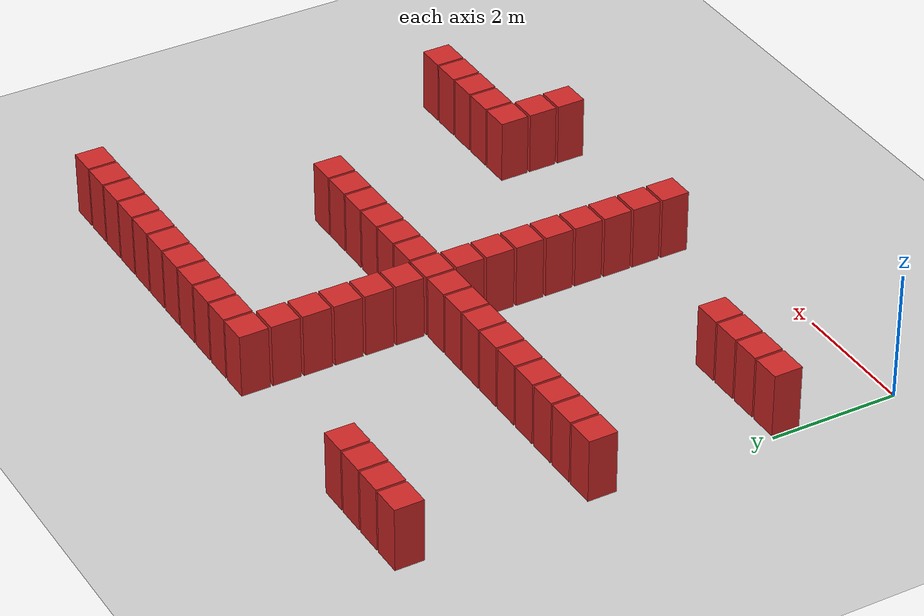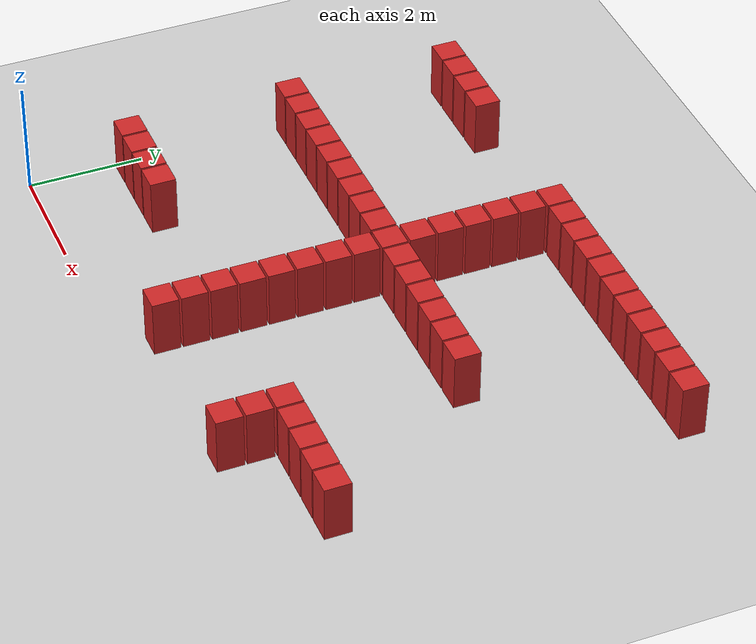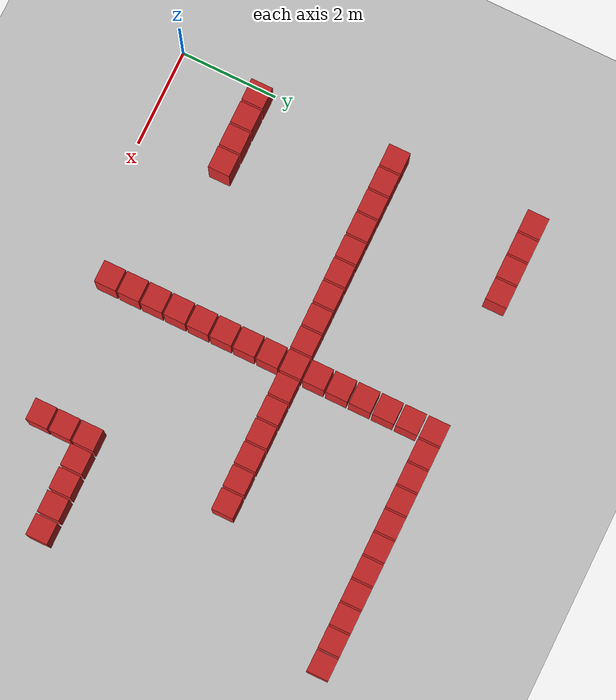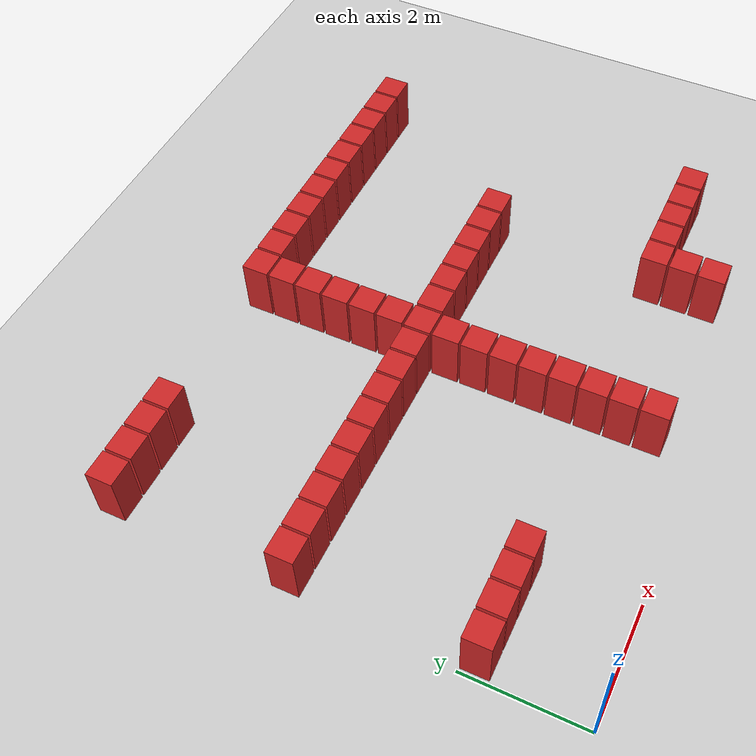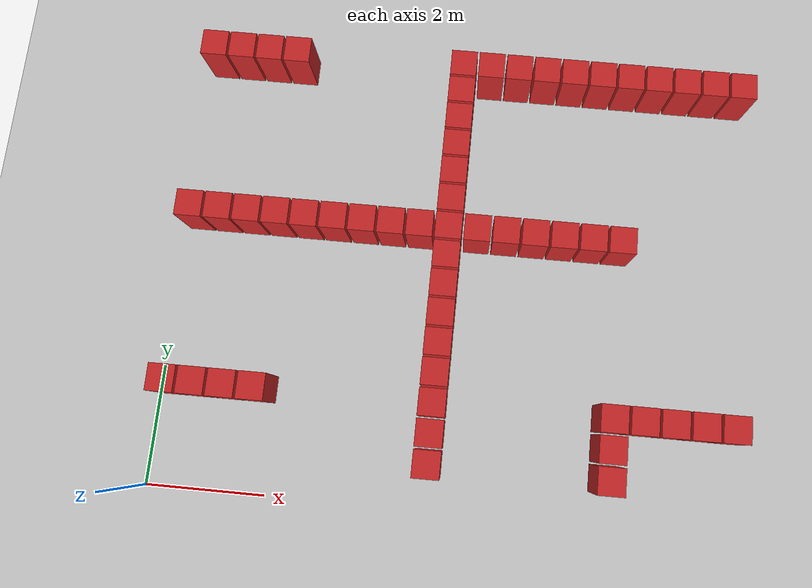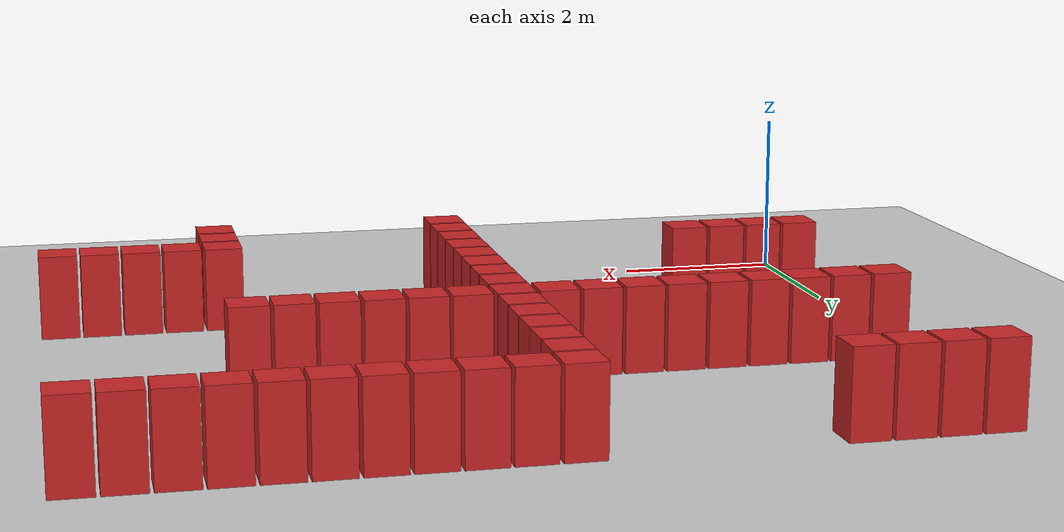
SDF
<sdf version="1.6">
 <world name="default">
  <model name="ground_plane">
   <static>1</static>
   <link name="link">
    <collision name="collision">
     <geometry><plane><normal>0 0 1</normal><size>100 100</size></plane></geometry>
     <surface><friction><ode><mu>100</mu><mu2>50</mu2></ode></friction></surface>
    </collision>
    <visual name="visual">
     <cast_shadows>0</cast_shadows>
     <geometry><plane><normal>0 0 1</normal><size>100 100</size></plane></geometry>
     <material>
      <script><uri>file://media/materials/scripts/gazebo.material</uri><name>Gazebo/Grey</name></script>
     </material>
    </visual>
   </link>
  </model>
  <model name="box_obstacle105">
   <static>0</static>
   <link name="link">
    <pose>0 0 0.1 0 -0 0</pose>
    <inertial>
     <mass>100</mass>
     <inertia>
      <ixx>0.166667</ixx>
      <ixy>0</ixy>
      <ixz>0</ixz>
      <iyy>0.166667</iyy>
      <iyz>0</iyz>
      <izz>0.166667</izz>
     </inertia>
    </inertial>
    <collision name="collision"><geometry><box><size>0.45 0.45 1</size></box></geometry></collision>
    <visual name="visual">
     <geometry><box><size>0.45 0.45 1</size></box></geometry>
     <material>
      <script><name>Gazebo/Red</name><uri>file://media/materials/scripts/gazebo.material</uri></script>
     </material>
    </visual>
   </link>
   <pose>0.289492 1.75876 0.4 0 5e-06 0.002247</pose>
  </model>
  <model name="box_obstacle106">
   <static>0</static>
   <link name="link">
    <pose>0 0 0.1 0 -0 0</pose>
    <inertial>
     <mass>100</mass>
     <inertia>
      <ixx>0.166667</ixx>
      <ixy>0</ixy>
      <ixz>0</ixz>
      <iyy>0.166667</iyy>
      <iyz>0</iyz>
      <izz>0.166667</izz>
     </inertia>
    </inertial>
    <collision name="collision"><geometry><box><size>0.45 0.45 1</size></box></geometry></collision>
    <visual name="visual">
     <geometry><box><size>0.45 0.45 1</size></box></geometry>
     <material>
      <script><name>Gazebo/Red</name><uri>file://media/materials/scripts/gazebo.material</uri></script>
     </material>
    </visual>
   </link>
   <pose>0.289492 4.69876 0.4 0 5e-06 0.002247</pose>
  </model>
  <model name="box_obstacle107">
   <static>0</static>
   <link name="link">
    <pose>0 0 0.1 0 -0 0</pose>
    <inertial>
     <mass>100</mass>
     <inertia>
      <ixx>0.166667</ixx>
      <ixy>0</ixy>
      <ixz>0</ixz>
      <iyy>0.166667</iyy>
      <iyz>0</iyz>
      <izz>0.166667</izz>
     </inertia>
    </inertial>
    <collision name="collision"><geometry><box><size>0.45 0.45 1</size></box></geometry></collision>
    <visual name="visual">
     <geometry><box><size>0.45 0.45 1</size></box></geometry>
     <material>
      <script><name>Gazebo/Red</name><uri>file://media/materials/scripts/gazebo.material</uri></script>
     </material>
    </visual>
   </link>
   <pose>0.289492 7.63876 0.4 0 5e-06 0.002247</pose>
  </model>
  <model name="box_obstacle110">
   <static>0</static>
   <link name="link">
    <pose>0 0 0.1 0 -0 0</pose>
    <inertial>
     <mass>100</mass>
     <inertia>
      <ixx>0.166667</ixx>
      <ixy>0</ixy>
      <ixz>0</ixz>
      <iyy>0.166667</iyy>
      <iyz>0</iyz>
      <izz>0.166667</izz>
     </inertia>
    </inertial>
    <collision name="collision"><geometry><box><size>0.45 0.45 1</size></box></geometry></collision>
    <visual name="visual">
     <geometry><box><size>0.45 0.45 1</size></box></geometry>
     <material>
      <script><name>Gazebo/Red</name><uri>file://media/materials/scripts/gazebo.material</uri></script>
     </material>
    </visual>
   </link>
   <pose>0.779492 1.75876 0.4 0 5e-06 0.002247</pose>
  </model>
  <model name="box_obstacle111">
   <static>0</static>
   <link name="link">
    <pose>0 0 0.1 0 -0 0</pose>
    <inertial>
     <mass>100</mass>
     <inertia>
      <ixx>0.166667</ixx>
      <ixy>0</ixy>
      <ixz>0</ixz>
      <iyy>0.166667</iyy>
      <iyz>0</iyz>
      <izz>0.166667</izz>
     </inertia>
    </inertial>
    <collision name="collision"><geometry><box><size>0.45 0.45 1</size></box></geometry></collision>
    <visual name="visual">
     <geometry><box><size>0.45 0.45 1</size></box></geometry>
     <material>
      <script><name>Gazebo/Red</name><uri>file://media/materials/scripts/gazebo.material</uri></script>
     </material>
    </visual>
   </link>
   <pose>0.779492 4.69876 0.4 0 5e-06 0.002247</pose>
  </model>
  <model name="box_obstacle112">
   <static>0</static>
   <link name="link">
    <pose>0 0 0.1 0 -0 0</pose>
    <inertial>
     <mass>100</mass>
     <inertia>
      <ixx>0.166667</ixx>
      <ixy>0</ixy>
      <ixz>0</ixz>
      <iyy>0.166667</iyy>
      <iyz>0</iyz>
      <izz>0.166667</izz>
     </inertia>
    </inertial>
    <collision name="collision"><geometry><box><size>0.45 0.45 1</size></box></geometry></collision>
    <visual name="visual">
     <geometry><box><size>0.45 0.45 1</size></box></geometry>
     <material>
      <script><name>Gazebo/Red</name><uri>file://media/materials/scripts/gazebo.material</uri></script>
     </material>
    </visual>
   </link>
   <pose>0.779492 7.63876 0.4 0 5e-06 0.002247</pose>
  </model>
  <model name="box_obstacle115">
   <static>0</static>
   <link name="link">
    <pose>0 0 0.1 0 -0 0</pose>
    <inertial>
     <mass>100</mass>
     <inertia>
      <ixx>0.166667</ixx>
      <ixy>0</ixy>
      <ixz>0</ixz>
      <iyy>0.166667</iyy>
      <iyz>0</iyz>
      <izz>0.166667</izz>
     </inertia>
    </inertial>
    <collision name="collision"><geometry><box><size>0.45 0.45 1</size></box></geometry></collision>
    <visual name="visual">
     <geometry><box><size>0.45 0.45 1</size></box></geometry>
     <material>
      <script><name>Gazebo/Red</name><uri>file://media/materials/scripts/gazebo.material</uri></script>
     </material>
    </visual>
   </link>
   <pose>1.26949 1.75876 0.4 0 5e-06 0.002247</pose>
  </model>
  <model name="box_obstacle116">
   <static>0</static>
   <link name="link">
    <pose>0 0 0.1 0 -0 0</pose>
    <inertial>
     <mass>100</mass>
     <inertia>
      <ixx>0.166667</ixx>
      <ixy>0</ixy>
      <ixz>0</ixz>
      <iyy>0.166667</iyy>
      <iyz>0</iyz>
      <izz>0.166667</izz>
     </inertia>
    </inertial>
    <collision name="collision"><geometry><box><size>0.45 0.45 1</size></box></geometry></collision>
    <visual name="visual">
     <geometry><box><size>0.45 0.45 1</size></box></geometry>
     <material>
      <script><name>Gazebo/Red</name><uri>file://media/materials/scripts/gazebo.material</uri></script>
     </material>
    </visual>
   </link>
   <pose>1.26949 4.69876 0.4 0 5e-06 0.002247</pose>
  </model>
  <model name="box_obstacle117">
   <static>0</static>
   <link name="link">
    <pose>0 0 0.1 0 -0 0</pose>
    <inertial>
     <mass>100</mass>
     <inertia>
      <ixx>0.166667</ixx>
      <ixy>0</ixy>
      <ixz>0</ixz>
      <iyy>0.166667</iyy>
      <iyz>0</iyz>
      <izz>0.166667</izz>
     </inertia>
    </inertial>
    <collision name="collision"><geometry><box><size>0.45 0.45 1</size></box></geometry></collision>
    <visual name="visual">
     <geometry><box><size>0.45 0.45 1</size></box></geometry>
     <material>
      <script><name>Gazebo/Red</name><uri>file://media/materials/scripts/gazebo.material</uri></script>
     </material>
    </visual>
   </link>
   <pose>1.26949 7.63876 0.4 0 5e-06 0.002247</pose>
  </model>
  <model name="box_obstacle126">
   <static>0</static>
   <link name="link">
    <pose>0 0 0.1 0 -0 0</pose>
    <inertial>
     <mass>100</mass>
     <inertia>
      <ixx>0.166667</ixx>
      <ixy>0</ixy>
      <ixz>0</ixz>
      <iyy>0.166667</iyy>
      <iyz>0</iyz>
      <izz>0.166667</izz>
     </inertia>
    </inertial>
    <collision name="collision"><geometry><box><size>0.45 0.45 1</size></box></geometry></collision>
    <visual name="visual">
     <geometry><box><size>0.45 0.45 1</size></box></geometry>
     <material>
      <script><name>Gazebo/Red</name><uri>file://media/materials/scripts/gazebo.material</uri></script>
     </material>
    </visual>
   </link>
   <pose>1.75949 1.75876 0.4 0 5e-06 0.002247</pose>
  </model>
  <model name="box_obstacle127">
   <static>0</static>
   <link name="link">
    <pose>0 0 0.1 0 -0 0</pose>
    <inertial>
     <mass>100</mass>
     <inertia>
      <ixx>0.166667</ixx>
      <ixy>0</ixy>
      <ixz>0</ixz>
      <iyy>0.166667</iyy>
      <iyz>0</iyz>
      <izz>0.166667</izz>
     </inertia>
    </inertial>
    <collision name="collision"><geometry><box><size>0.45 0.45 1</size></box></geometry></collision>
    <visual name="visual">
     <geometry><box><size>0.45 0.45 1</size></box></geometry>
     <material>
      <script><name>Gazebo/Red</name><uri>file://media/materials/scripts/gazebo.material</uri></script>
     </material>
    </visual>
   </link>
   <pose>1.75949 4.69876 0.4 0 5e-06 0.002247</pose>
  </model>
  <model name="box_obstacle128">
   <static>0</static>
   <link name="link">
    <pose>0 0 0.1 0 -0 0</pose>
    <inertial>
     <mass>100</mass>
     <inertia>
      <ixx>0.166667</ixx>
      <ixy>0</ixy>
      <ixz>0</ixz>
      <iyy>0.166667</iyy>
      <iyz>0</iyz>
      <izz>0.166667</izz>
     </inertia>
    </inertial>
    <collision name="collision"><geometry><box><size>0.45 0.45 1</size></box></geometry></collision>
    <visual name="visual">
     <geometry><box><size>0.45 0.45 1</size></box></geometry>
     <material>
      <script><name>Gazebo/Red</name><uri>file://media/materials/scripts/gazebo.material</uri></script>
     </material>
    </visual>
   </link>
   <pose>1.75949 7.63876 0.4 0 5e-06 0.002247</pose>
  </model>
  <model name="box_obstacle131">
   <static>0</static>
   <link name="link">
    <pose>0 0 0.1 0 -0 0</pose>
    <inertial>
     <mass>100</mass>
     <inertia>
      <ixx>0.166667</ixx>
      <ixy>0</ixy>
      <ixz>0</ixz>
      <iyy>0.166667</iyy>
      <iyz>0</iyz>
      <izz>0.166667</izz>
     </inertia>
    </inertial>
    <collision name="collision"><geometry><box><size>0.45 0.45 1</size></box></geometry></collision>
    <visual name="visual">
     <geometry><box><size>0.45 0.45 1</size></box></geometry>
     <material>
      <script><name>Gazebo/Red</name><uri>file://media/materials/scripts/gazebo.material</uri></script>
     </material>
    </visual>
   </link>
   <pose>2.24949 4.69876 0.4 0 5e-06 0.002247</pose>
  </model>
  <model name="box_obstacle134">
   <static>0</static>
   <link name="link">
    <pose>0 0 0.1 0 -0 0</pose>
    <inertial>
     <mass>100</mass>
     <inertia>
      <ixx>0.166667</ixx>
      <ixy>0</ixy>
      <ixz>0</ixz>
      <iyy>0.166667</iyy>
      <iyz>0</iyz>
      <izz>0.166667</izz>
     </inertia>
    </inertial>
    <collision name="collision"><geometry><box><size>0.45 0.45 1</size></box></geometry></collision>
    <visual name="visual">
     <geometry><box><size>0.45 0.45 1</size></box></geometry>
     <material>
      <script><name>Gazebo/Red</name><uri>file://media/materials/scripts/gazebo.material</uri></script>
     </material>
    </visual>
   </link>
   <pose>2.73949 4.69876 0.4 0 5e-06 0.002247</pose>
  </model>
  <model name="box_obstacle137">
   <static>0</static>
   <link name="link">
    <pose>0 0 0.1 0 -0 0</pose>
    <inertial>
     <mass>100</mass>
     <inertia>
      <ixx>0.166667</ixx>
      <ixy>0</ixy>
      <ixz>0</ixz>
      <iyy>0.166667</iyy>
      <iyz>0</iyz>
      <izz>0.166667</izz>
     </inertia>
    </inertial>
    <collision name="collision"><geometry><box><size>0.45 0.45 1</size></box></geometry></collision>
    <visual name="visual">
     <geometry><box><size>0.45 0.45 1</size></box></geometry>
     <material>
      <script><name>Gazebo/Red</name><uri>file://media/materials/scripts/gazebo.material</uri></script>
     </material>
    </visual>
   </link>
   <pose>3.22949 4.69876 0.4 0 5e-06 0.002247</pose>
  </model>
  <model name="box_obstacle140">
   <static>0</static>
   <link name="link">
    <pose>0 0 0.1 0 -0 0</pose>
    <inertial>
     <mass>100</mass>
     <inertia>
      <ixx>0.166667</ixx>
      <ixy>0</ixy>
      <ixz>0</ixz>
      <iyy>0.166667</iyy>
      <iyz>0</iyz>
      <izz>0.166667</izz>
     </inertia>
    </inertial>
    <collision name="collision"><geometry><box><size>0.45 0.45 1</size></box></geometry></collision>
    <visual name="visual">
     <geometry><box><size>0.45 0.45 1</size></box></geometry>
     <material>
      <script><name>Gazebo/Red</name><uri>file://media/materials/scripts/gazebo.material</uri></script>
     </material>
    </visual>
   </link>
   <pose>3.71949 4.69876 0.4 0 5e-06 0.002247</pose>
  </model>
  <model name="box_obstacle143">
   <static>0</static>
   <link name="link">
    <pose>0 0 0.1 0 -0 0</pose>
    <inertial>
     <mass>100</mass>
     <inertia>
      <ixx>0.166667</ixx>
      <ixy>0</ixy>
      <ixz>0</ixz>
      <iyy>0.166667</iyy>
      <iyz>0</iyz>
      <izz>0.166667</izz>
     </inertia>
    </inertial>
    <collision name="collision"><geometry><box><size>0.45 0.45 1</size></box></geometry></collision>
    <visual name="visual">
     <geometry><box><size>0.45 0.45 1</size></box></geometry>
     <material>
      <script><name>Gazebo/Red</name><uri>file://media/materials/scripts/gazebo.material</uri></script>
     </material>
    </visual>
   </link>
   <pose>4.20949 4.69876 0.4 0 5e-06 0.002247</pose>
  </model>
  <model name="box_obstacle155">
   <static>0</static>
   <link name="link">
    <pose>0 0 0.1 0 -0 0</pose>
    <inertial>
     <mass>100</mass>
     <inertia>
      <ixx>0.166667</ixx>
      <ixy>0</ixy>
      <ixz>0</ixz>
      <iyy>0.166667</iyy>
      <iyz>0</iyz>
      <izz>0.166667</izz>
     </inertia>
    </inertial>
    <collision name="collision"><geometry><box><size>0.45 0.45 1</size></box></geometry></collision>
    <visual name="visual">
     <geometry><box><size>0.45 0.45 1</size></box></geometry>
     <material>
      <script><name>Gazebo/Red</name><uri>file://media/materials/scripts/gazebo.material</uri></script>
     </material>
    </visual>
   </link>
   <pose>4.69949 0.778758 0.4 0 5e-06 0.002247</pose>
  </model>
  <model name="box_obstacle156">
   <static>0</static>
   <link name="link">
    <pose>0 0 0.1 0 -0 0</pose>
    <inertial>
     <mass>100</mass>
     <inertia>
      <ixx>0.166667</ixx>
      <ixy>0</ixy>
      <ixz>0</ixz>
      <iyy>0.166667</iyy>
      <iyz>0</iyz>
      <izz>0.166667</izz>
     </inertia>
    </inertial>
    <collision name="collision"><geometry><box><size>0.45 0.45 1</size></box></geometry></collision>
    <visual name="visual">
     <geometry><box><size>0.45 0.45 1</size></box></geometry>
     <material>
      <script><name>Gazebo/Red</name><uri>file://media/materials/scripts/gazebo.material</uri></script>
     </material>
    </visual>
   </link>
   <pose>4.69949 1.26876 0.4 0 5e-06 0.002247</pose>
  </model>
  <model name="box_obstacle157">
   <static>0</static>
   <link name="link">
    <pose>0 0 0.1 0 -0 0</pose>
    <inertial>
     <mass>100</mass>
     <inertia>
      <ixx>0.166667</ixx>
      <ixy>0</ixy>
      <ixz>0</ixz>
      <iyy>0.166667</iyy>
      <iyz>0</iyz>
      <izz>0.166667</izz>
     </inertia>
    </inertial>
    <collision name="collision"><geometry><box><size>0.45 0.45 1</size></box></geometry></collision>
    <visual name="visual">
     <geometry><box><size>0.45 0.45 1</size></box></geometry>
     <material>
      <script><name>Gazebo/Red</name><uri>file://media/materials/scripts/gazebo.material</uri></script>
     </material>
    </visual>
   </link>
   <pose>4.69949 1.75876 0.4 0 5e-06 0.002247</pose>
  </model>
  <model name="box_obstacle158">
   <static>0</static>
   <link name="link">
    <pose>0 0 0.1 0 -0 0</pose>
    <inertial>
     <mass>100</mass>
     <inertia>
      <ixx>0.166667</ixx>
      <ixy>0</ixy>
      <ixz>0</ixz>
      <iyy>0.166667</iyy>
      <iyz>0</iyz>
      <izz>0.166667</izz>
     </inertia>
    </inertial>
    <collision name="collision"><geometry><box><size>0.45 0.45 1</size></box></geometry></collision>
    <visual name="visual">
     <geometry><box><size>0.45 0.45 1</size></box></geometry>
     <material>
      <script><name>Gazebo/Red</name><uri>file://media/materials/scripts/gazebo.material</uri></script>
     </material>
    </visual>
   </link>
   <pose>4.69949 2.24876 0.4 0 5e-06 0.002247</pose>
  </model>
  <model name="box_obstacle159">
   <static>0</static>
   <link name="link">
    <pose>0 0 0.1 0 -0 0</pose>
    <inertial>
     <mass>100</mass>
     <inertia>
      <ixx>0.166667</ixx>
      <ixy>0</ixy>
      <ixz>0</ixz>
      <iyy>0.166667</iyy>
      <iyz>0</iyz>
      <izz>0.166667</izz>
     </inertia>
    </inertial>
    <collision name="collision"><geometry><box><size>0.45 0.45 1</size></box></geometry></collision>
    <visual name="visual">
     <geometry><box><size>0.45 0.45 1</size></box></geometry>
     <material>
      <script><name>Gazebo/Red</name><uri>file://media/materials/scripts/gazebo.material</uri></script>
     </material>
    </visual>
   </link>
   <pose>4.69949 2.73876 0.4 0 5e-06 0.002247</pose>
  </model>
  <model name="box_obstacle160">
   <static>0</static>
   <link name="link">
    <pose>0 0 0.1 0 -0 0</pose>
    <inertial>
     <mass>100</mass>
     <inertia>
      <ixx>0.166667</ixx>
      <ixy>0</ixy>
      <ixz>0</ixz>
      <iyy>0.166667</iyy>
      <iyz>0</iyz>
      <izz>0.166667</izz>
     </inertia>
    </inertial>
    <collision name="collision"><geometry><box><size>0.45 0.45 1</size></box></geometry></collision>
    <visual name="visual">
     <geometry><box><size>0.45 0.45 1</size></box></geometry>
     <material>
      <script><name>Gazebo/Red</name><uri>file://media/materials/scripts/gazebo.material</uri></script>
     </material>
    </visual>
   </link>
   <pose>4.69949 3.22876 0.4 0 5e-06 0.002247</pose>
  </model>
  <model name="box_obstacle161">
   <static>0</static>
   <link name="link">
    <pose>0 0 0.1 0 -0 0</pose>
    <inertial>
     <mass>100</mass>
     <inertia>
      <ixx>0.166667</ixx>
      <ixy>0</ixy>
      <ixz>0</ixz>
      <iyy>0.166667</iyy>
      <iyz>0</iyz>
      <izz>0.166667</izz>
     </inertia>
    </inertial>
    <collision name="collision"><geometry><box><size>0.45 0.45 1</size></box></geometry></collision>
    <visual name="visual">
     <geometry><box><size>0.45 0.45 1</size></box></geometry>
     <material>
      <script><name>Gazebo/Red</name><uri>file://media/materials/scripts/gazebo.material</uri></script>
     </material>
    </visual>
   </link>
   <pose>4.69949 3.71876 0.4 0 5e-06 0.002247</pose>
  </model>
  <model name="box_obstacle162">
   <static>0</static>
   <link name="link">
    <pose>0 0 0.1 0 -0 0</pose>
    <inertial>
     <mass>100</mass>
     <inertia>
      <ixx>0.166667</ixx>
      <ixy>0</ixy>
      <ixz>0</ixz>
      <iyy>0.166667</iyy>
      <iyz>0</iyz>
      <izz>0.166667</izz>
     </inertia>
    </inertial>
    <collision name="collision"><geometry><box><size>0.45 0.45 1</size></box></geometry></collision>
    <visual name="visual">
     <geometry><box><size>0.45 0.45 1</size></box></geometry>
     <material>
      <script><name>Gazebo/Red</name><uri>file://media/materials/scripts/gazebo.material</uri></script>
     </material>
    </visual>
   </link>
   <pose>4.69949 4.20876 0.4 0 5e-06 0.002247</pose>
  </model>
  <model name="box_obstacle163">
   <static>0</static>
   <link name="link">
    <pose>0 0 0.1 0 -0 0</pose>
    <inertial>
     <mass>100</mass>
     <inertia>
      <ixx>0.166667</ixx>
      <ixy>0</ixy>
      <ixz>0</ixz>
      <iyy>0.166667</iyy>
      <iyz>0</iyz>
      <izz>0.166667</izz>
     </inertia>
    </inertial>
    <collision name="collision"><geometry><box><size>0.45 0.45 1</size></box></geometry></collision>
    <visual name="visual">
     <geometry><box><size>0.45 0.45 1</size></box></geometry>
     <material>
      <script><name>Gazebo/Red</name><uri>file://media/materials/scripts/gazebo.material</uri></script>
     </material>
    </visual>
   </link>
   <pose>4.69949 4.69876 0.4 0 5e-06 0.002247</pose>
  </model>
  <model name="box_obstacle164">
   <static>0</static>
   <link name="link">
    <pose>0 0 0.1 0 -0 0</pose>
    <inertial>
     <mass>100</mass>
     <inertia>
      <ixx>0.166667</ixx>
      <ixy>0</ixy>
      <ixz>0</ixz>
      <iyy>0.166667</iyy>
      <iyz>0</iyz>
      <izz>0.166667</izz>
     </inertia>
    </inertial>
    <collision name="collision"><geometry><box><size>0.45 0.45 1</size></box></geometry></collision>
    <visual name="visual">
     <geometry><box><size>0.45 0.45 1</size></box></geometry>
     <material>
      <script><name>Gazebo/Red</name><uri>file://media/materials/scripts/gazebo.material</uri></script>
     </material>
    </visual>
   </link>
   <pose>4.69949 5.18876 0.4 0 5e-06 0.002247</pose>
  </model>
  <model name="box_obstacle165">
   <static>0</static>
   <link name="link">
    <pose>0 0 0.1 0 -0 0</pose>
    <inertial>
     <mass>100</mass>
     <inertia>
      <ixx>0.166667</ixx>
      <ixy>0</ixy>
      <ixz>0</ixz>
      <iyy>0.166667</iyy>
      <iyz>0</iyz>
      <izz>0.166667</izz>
     </inertia>
    </inertial>
    <collision name="collision"><geometry><box><size>0.45 0.45 1</size></box></geometry></collision>
    <visual name="visual">
     <geometry><box><size>0.45 0.45 1</size></box></geometry>
     <material>
      <script><name>Gazebo/Red</name><uri>file://media/materials/scripts/gazebo.material</uri></script>
     </material>
    </visual>
   </link>
   <pose>4.69949 5.67876 0.4 0 5e-06 0.002247</pose>
  </model>
  <model name="box_obstacle166">
   <static>0</static>
   <link name="link">
    <pose>0 0 0.1 0 -0 0</pose>
    <inertial>
     <mass>100</mass>
     <inertia>
      <ixx>0.166667</ixx>
      <ixy>0</ixy>
      <ixz>0</ixz>
      <iyy>0.166667</iyy>
      <iyz>0</iyz>
      <izz>0.166667</izz>
     </inertia>
    </inertial>
    <collision name="collision"><geometry><box><size>0.45 0.45 1</size></box></geometry></collision>
    <visual name="visual">
     <geometry><box><size>0.45 0.45 1</size></box></geometry>
     <material>
      <script><name>Gazebo/Red</name><uri>file://media/materials/scripts/gazebo.material</uri></script>
     </material>
    </visual>
   </link>
   <pose>4.69949 6.16876 0.4 0 5e-06 0.002247</pose>
  </model>
  <model name="box_obstacle167">
   <static>0</static>
   <link name="link">
    <pose>0 0 0.1 0 -0 0</pose>
    <inertial>
     <mass>100</mass>
     <inertia>
      <ixx>0.166667</ixx>
      <ixy>0</ixy>
      <ixz>0</ixz>
      <iyy>0.166667</iyy>
      <iyz>0</iyz>
      <izz>0.166667</izz>
     </inertia>
    </inertial>
    <collision name="collision"><geometry><box><size>0.45 0.45 1</size></box></geometry></collision>
    <visual name="visual">
     <geometry><box><size>0.45 0.45 1</size></box></geometry>
     <material>
      <script><name>Gazebo/Red</name><uri>file://media/materials/scripts/gazebo.material</uri></script>
     </material>
    </visual>
   </link>
   <pose>4.69949 6.65876 0.4 0 5e-06 0.002247</pose>
  </model>
  <model name="box_obstacle168">
   <static>0</static>
   <link name="link">
    <pose>0 0 0.1 0 -0 0</pose>
    <inertial>
     <mass>100</mass>
     <inertia>
      <ixx>0.166667</ixx>
      <ixy>0</ixy>
      <ixz>0</ixz>
      <iyy>0.166667</iyy>
      <iyz>0</iyz>
      <izz>0.166667</izz>
     </inertia>
    </inertial>
    <collision name="collision"><geometry><box><size>0.45 0.45 1</size></box></geometry></collision>
    <visual name="visual">
     <geometry><box><size>0.45 0.45 1</size></box></geometry>
     <material>
      <script><name>Gazebo/Red</name><uri>file://media/materials/scripts/gazebo.material</uri></script>
     </material>
    </visual>
   </link>
   <pose>4.69949 7.14876 0.4 0 5e-06 0.002247</pose>
  </model>
  <model name="box_obstacle169">
   <static>0</static>
   <link name="link">
    <pose>0 0 0.1 0 -0 0</pose>
    <inertial>
     <mass>100</mass>
     <inertia>
      <ixx>0.166667</ixx>
      <ixy>0</ixy>
      <ixz>0</ixz>
      <iyy>0.166667</iyy>
      <iyz>0</iyz>
      <izz>0.166667</izz>
     </inertia>
    </inertial>
    <collision name="collision"><geometry><box><size>0.45 0.45 1</size></box></geometry></collision>
    <visual name="visual">
     <geometry><box><size>0.45 0.45 1</size></box></geometry>
     <material>
      <script><name>Gazebo/Red</name><uri>file://media/materials/scripts/gazebo.material</uri></script>
     </material>
    </visual>
   </link>
   <pose>4.69949 7.63876 0.4 0 5e-06 0.002247</pose>
  </model>
  <model name="box_obstacle172">
   <static>0</static>
   <link name="link">
    <pose>0 0 0.1 0 -0 0</pose>
    <inertial>
     <mass>100</mass>
     <inertia>
      <ixx>0.166667</ixx>
      <ixy>0</ixy>
      <ixz>0</ixz>
      <iyy>0.166667</iyy>
      <iyz>0</iyz>
      <izz>0.166667</izz>
     </inertia>
    </inertial>
    <collision name="collision"><geometry><box><size>0.45 0.45 1</size></box></geometry></collision>
    <visual name="visual">
     <geometry><box><size>0.45 0.45 1</size></box></geometry>
     <material>
      <script><name>Gazebo/Red</name><uri>file://media/materials/scripts/gazebo.material</uri></script>
     </material>
    </visual>
   </link>
   <pose>5.18949 4.69876 0.4 0 5e-06 0.002247</pose>
  </model>
  <model name="box_obstacle173">
   <static>0</static>
   <link name="link">
    <pose>0 0 0.1 0 -0 0</pose>
    <inertial>
     <mass>100</mass>
     <inertia>
      <ixx>0.166667</ixx>
      <ixy>0</ixy>
      <ixz>0</ixz>
      <iyy>0.166667</iyy>
      <iyz>0</iyz>
      <izz>0.166667</izz>
     </inertia>
    </inertial>
    <collision name="collision"><geometry><box><size>0.45 0.45 1</size></box></geometry></collision>
    <visual name="visual">
     <geometry><box><size>0.45 0.45 1</size></box></geometry>
     <material>
      <script><name>Gazebo/Red</name><uri>file://media/materials/scripts/gazebo.material</uri></script>
     </material>
    </visual>
   </link>
   <pose>5.18949 7.63876 0.4 0 5e-06 0.002247</pose>
  </model>
  <model name="box_obstacle176">
   <static>0</static>
   <link name="link">
    <pose>0 0 0.1 0 -0 0</pose>
    <inertial>
     <mass>100</mass>
     <inertia>
      <ixx>0.166667</ixx>
      <ixy>0</ixy>
      <ixz>0</ixz>
      <iyy>0.166667</iyy>
      <iyz>0</iyz>
      <izz>0.166667</izz>
     </inertia>
    </inertial>
    <collision name="collision"><geometry><box><size>0.45 0.45 1</size></box></geometry></collision>
    <visual name="visual">
     <geometry><box><size>0.45 0.45 1</size></box></geometry>
     <material>
      <script><name>Gazebo/Red</name><uri>file://media/materials/scripts/gazebo.material</uri></script>
     </material>
    </visual>
   </link>
   <pose>5.67949 4.69876 0.4 0 5e-06 0.002247</pose>
  </model>
  <model name="box_obstacle177">
   <static>0</static>
   <link name="link">
    <pose>0 0 0.1 0 -0 0</pose>
    <inertial>
     <mass>100</mass>
     <inertia>
      <ixx>0.166667</ixx>
      <ixy>0</ixy>
      <ixz>0</ixz>
      <iyy>0.166667</iyy>
      <iyz>0</iyz>
      <izz>0.166667</izz>
     </inertia>
    </inertial>
    <collision name="collision"><geometry><box><size>0.45 0.45 1</size></box></geometry></collision>
    <visual name="visual">
     <geometry><box><size>0.45 0.45 1</size></box></geometry>
     <material>
      <script><name>Gazebo/Red</name><uri>file://media/materials/scripts/gazebo.material</uri></script>
     </material>
    </visual>
   </link>
   <pose>5.67949 7.63876 0.4 0 5e-06 0.002247</pose>
  </model>
  <model name="box_obstacle180">
   <static>0</static>
   <link name="link">
    <pose>0 0 0.1 0 -0 0</pose>
    <inertial>
     <mass>100</mass>
     <inertia>
      <ixx>0.166667</ixx>
      <ixy>0</ixy>
      <ixz>0</ixz>
      <iyy>0.166667</iyy>
      <iyz>0</iyz>
      <izz>0.166667</izz>
     </inertia>
    </inertial>
    <collision name="collision"><geometry><box><size>0.45 0.45 1</size></box></geometry></collision>
    <visual name="visual">
     <geometry><box><size>0.45 0.45 1</size></box></geometry>
     <material>
      <script><name>Gazebo/Red</name><uri>file://media/materials/scripts/gazebo.material</uri></script>
     </material>
    </visual>
   </link>
   <pose>6.16949 4.69876 0.4 0 5e-06 0.002247</pose>
  </model>
  <model name="box_obstacle181">
   <static>0</static>
   <link name="link">
    <pose>0 0 0.1 0 -0 0</pose>
    <inertial>
     <mass>100</mass>
     <inertia>
      <ixx>0.166667</ixx>
      <ixy>0</ixy>
      <ixz>0</ixz>
      <iyy>0.166667</iyy>
      <iyz>0</iyz>
      <izz>0.166667</izz>
     </inertia>
    </inertial>
    <collision name="collision"><geometry><box><size>0.45 0.45 1</size></box></geometry></collision>
    <visual name="visual">
     <geometry><box><size>0.45 0.45 1</size></box></geometry>
     <material>
      <script><name>Gazebo/Red</name><uri>file://media/materials/scripts/gazebo.material</uri></script>
     </material>
    </visual>
   </link>
   <pose>6.16949 7.63876 0.4 0 5e-06 0.002247</pose>
  </model>
  <model name="box_obstacle184">
   <static>0</static>
   <link name="link">
    <pose>0 0 0.1 0 -0 0</pose>
    <inertial>
     <mass>100</mass>
     <inertia>
      <ixx>0.166667</ixx>
      <ixy>0</ixy>
      <ixz>0</ixz>
      <iyy>0.166667</iyy>
      <iyz>0</iyz>
      <izz>0.166667</izz>
     </inertia>
    </inertial>
    <collision name="collision"><geometry><box><size>0.45 0.45 1</size></box></geometry></collision>
    <visual name="visual">
     <geometry><box><size>0.45 0.45 1</size></box></geometry>
     <material>
      <script><name>Gazebo/Red</name><uri>file://media/materials/scripts/gazebo.material</uri></script>
     </material>
    </visual>
   </link>
   <pose>6.65949 4.69876 0.4 0 5e-06 0.002247</pose>
  </model>
  <model name="box_obstacle185">
   <static>0</static>
   <link name="link">
    <pose>0 0 0.1 0 -0 0</pose>
    <inertial>
     <mass>100</mass>
     <inertia>
      <ixx>0.166667</ixx>
      <ixy>0</ixy>
      <ixz>0</ixz>
      <iyy>0.166667</iyy>
      <iyz>0</iyz>
      <izz>0.166667</izz>
     </inertia>
    </inertial>
    <collision name="collision"><geometry><box><size>0.45 0.45 1</size></box></geometry></collision>
    <visual name="visual">
     <geometry><box><size>0.45 0.45 1</size></box></geometry>
     <material>
      <script><name>Gazebo/Red</name><uri>file://media/materials/scripts/gazebo.material</uri></script>
     </material>
    </visual>
   </link>
   <pose>6.65949 7.63876 0.4 0 5e-06 0.002247</pose>
  </model>
  <model name="box_obstacle188">
   <static>0</static>
   <link name="link">
    <pose>0 0 0.1 0 -0 0</pose>
    <inertial>
     <mass>100</mass>
     <inertia>
      <ixx>0.166667</ixx>
      <ixy>0</ixy>
      <ixz>0</ixz>
      <iyy>0.166667</iyy>
      <iyz>0</iyz>
      <izz>0.166667</izz>
     </inertia>
    </inertial>
    <collision name="collision"><geometry><box><size>0.45 0.45 1</size></box></geometry></collision>
    <visual name="visual">
     <geometry><box><size>0.45 0.45 1</size></box></geometry>
     <material>
      <script><name>Gazebo/Red</name><uri>file://media/materials/scripts/gazebo.material</uri></script>
     </material>
    </visual>
   </link>
   <pose>7.14949 4.69876 0.4 0 5e-06 0.002247</pose>
  </model>
  <model name="box_obstacle189">
   <static>0</static>
   <link name="link">
    <pose>0 0 0.1 0 -0 0</pose>
    <inertial>
     <mass>100</mass>
     <inertia>
      <ixx>0.166667</ixx>
      <ixy>0</ixy>
      <ixz>0</ixz>
      <iyy>0.166667</iyy>
      <iyz>0</iyz>
      <izz>0.166667</izz>
     </inertia>
    </inertial>
    <collision name="collision"><geometry><box><size>0.45 0.45 1</size></box></geometry></collision>
    <visual name="visual">
     <geometry><box><size>0.45 0.45 1</size></box></geometry>
     <material>
      <script><name>Gazebo/Red</name><uri>file://media/materials/scripts/gazebo.material</uri></script>
     </material>
    </visual>
   </link>
   <pose>7.14949 7.63876 0.4 0 5e-06 0.002247</pose>
  </model>
  <model name="box_obstacle201">
   <static>0</static>
   <link name="link">
    <pose>0 0 0.1 0 -0 0</pose>
    <inertial>
     <mass>100</mass>
     <inertia>
      <ixx>0.166667</ixx>
      <ixy>0</ixy>
      <ixz>0</ixz>
      <iyy>0.166667</iyy>
      <iyz>0</iyz>
      <izz>0.166667</izz>
     </inertia>
    </inertial>
    <collision name="collision"><geometry><box><size>0.45 0.45 1</size></box></geometry></collision>
    <visual name="visual">
     <geometry><box><size>0.45 0.45 1</size></box></geometry>
     <material>
      <script><name>Gazebo/Red</name><uri>file://media/materials/scripts/gazebo.material</uri></script>
     </material>
    </visual>
   </link>
   <pose>7.63949 0.778758 0.4 0 5e-06 0.002247</pose>
  </model>
  <model name="box_obstacle202">
   <static>0</static>
   <link name="link">
    <pose>0 0 0.1 0 -0 0</pose>
    <inertial>
     <mass>100</mass>
     <inertia>
      <ixx>0.166667</ixx>
      <ixy>0</ixy>
      <ixz>0</ixz>
      <iyy>0.166667</iyy>
      <iyz>0</iyz>
      <izz>0.166667</izz>
     </inertia>
    </inertial>
    <collision name="collision"><geometry><box><size>0.45 0.45 1</size></box></geometry></collision>
    <visual name="visual">
     <geometry><box><size>0.45 0.45 1</size></box></geometry>
     <material>
      <script><name>Gazebo/Red</name><uri>file://media/materials/scripts/gazebo.material</uri></script>
     </material>
    </visual>
   </link>
   <pose>7.63949 1.26876 0.4 0 5e-06 0.002247</pose>
  </model>
  <model name="box_obstacle203">
   <static>0</static>
   <link name="link">
    <pose>0 0 0.1 0 -0 0</pose>
    <inertial>
     <mass>100</mass>
     <inertia>
      <ixx>0.166667</ixx>
      <ixy>0</ixy>
      <ixz>0</ixz>
      <iyy>0.166667</iyy>
      <iyz>0</iyz>
      <izz>0.166667</izz>
     </inertia>
    </inertial>
    <collision name="collision"><geometry><box><size>0.45 0.45 1</size></box></geometry></collision>
    <visual name="visual">
     <geometry><box><size>0.45 0.45 1</size></box></geometry>
     <material>
      <script><name>Gazebo/Red</name><uri>file://media/materials/scripts/gazebo.material</uri></script>
     </material>
    </visual>
   </link>
   <pose>7.63949 1.75876 0.4 0 5e-06 0.002247</pose>
  </model>
  <model name="box_obstacle204">
   <static>0</static>
   <link name="link">
    <pose>0 0 0.1 0 -0 0</pose>
    <inertial>
     <mass>100</mass>
     <inertia>
      <ixx>0.166667</ixx>
      <ixy>0</ixy>
      <ixz>0</ixz>
      <iyy>0.166667</iyy>
      <iyz>0</iyz>
      <izz>0.166667</izz>
     </inertia>
    </inertial>
    <collision name="collision"><geometry><box><size>0.45 0.45 1</size></box></geometry></collision>
    <visual name="visual">
     <geometry><box><size>0.45 0.45 1</size></box></geometry>
     <material>
      <script><name>Gazebo/Red</name><uri>file://media/materials/scripts/gazebo.material</uri></script>
     </material>
    </visual>
   </link>
   <pose>7.63949 4.69876 0.4 0 5e-06 0.002247</pose>
  </model>
  <model name="box_obstacle205">
   <static>0</static>
   <link name="link">
    <pose>0 0 0.1 0 -0 0</pose>
    <inertial>
     <mass>100</mass>
     <inertia>
      <ixx>0.166667</ixx>
      <ixy>0</ixy>
      <ixz>0</ixz>
      <iyy>0.166667</iyy>
      <iyz>0</iyz>
      <izz>0.166667</izz>
     </inertia>
    </inertial>
    <collision name="collision"><geometry><box><size>0.45 0.45 1</size></box></geometry></collision>
    <visual name="visual">
     <geometry><box><size>0.45 0.45 1</size></box></geometry>
     <material>
      <script><name>Gazebo/Red</name><uri>file://media/materials/scripts/gazebo.material</uri></script>
     </material>
    </visual>
   </link>
   <pose>7.63949 7.63876 0.4 0 5e-06 0.002247</pose>
  </model>
  <model name="box_obstacle206">
   <static>0</static>
   <link name="link">
    <pose>0 0 0.1 0 -0 0</pose>
    <inertial>
     <mass>100</mass>
     <inertia>
      <ixx>0.166667</ixx>
      <ixy>0</ixy>
      <ixz>0</ixz>
      <iyy>0.166667</iyy>
      <iyz>0</iyz>
      <izz>0.166667</izz>
     </inertia>
    </inertial>
    <collision name="collision"><geometry><box><size>0.45 0.45 1</size></box></geometry></collision>
    <visual name="visual">
     <geometry><box><size>0.45 0.45 1</size></box></geometry>
     <material>
      <script><name>Gazebo/Red</name><uri>file://media/materials/scripts/gazebo.material</uri></script>
     </material>
    </visual>
   </link>
   <pose>8.12949 1.75876 0.4 0 5e-06 0.002247</pose>
  </model>
  <model name="box_obstacle207">
   <static>0</static>
   <link name="link">
    <pose>0 0 0.1 0 -0 0</pose>
    <inertial>
     <mass>100</mass>
     <inertia>
      <ixx>0.166667</ixx>
      <ixy>0</ixy>
      <ixz>0</ixz>
      <iyy>0.166667</iyy>
      <iyz>0</iyz>
      <izz>0.166667</izz>
     </inertia>
    </inertial>
    <collision name="collision"><geometry><box><size>0.45 0.45 1</size></box></geometry></collision>
    <visual name="visual">
     <geometry><box><size>0.45 0.45 1</size></box></geometry>
     <material>
      <script><name>Gazebo/Red</name><uri>file://media/materials/scripts/gazebo.material</uri></script>
     </material>
    </visual>
   </link>
   <pose>8.12949 7.63876 0.4 0 5e-06 0.002247</pose>
  </model>
  <model name="box_obstacle208">
   <static>0</static>
   <link name="link">
    <pose>0 0 0.1 0 -0 0</pose>
    <inertial>
     <mass>100</mass>
     <inertia>
      <ixx>0.166667</ixx>
      <ixy>0</ixy>
      <ixz>0</ixz>
      <iyy>0.166667</iyy>
      <iyz>0</iyz>
      <izz>0.166667</izz>
     </inertia>
    </inertial>
    <collision name="collision"><geometry><box><size>0.45 0.45 1</size></box></geometry></collision>
    <visual name="visual">
     <geometry><box><size>0.45 0.45 1</size></box></geometry>
     <material>
      <script><name>Gazebo/Red</name><uri>file://media/materials/scripts/gazebo.material</uri></script>
     </material>
    </visual>
   </link>
   <pose>8.61949 1.75876 0.4 0 5e-06 0.002247</pose>
  </model>
  <model name="box_obstacle209">
   <static>0</static>
   <link name="link">
    <pose>0 0 0.1 0 -0 0</pose>
    <inertial>
     <mass>100</mass>
     <inertia>
      <ixx>0.166667</ixx>
      <ixy>0</ixy>
      <ixz>0</ixz>
      <iyy>0.166667</iyy>
      <iyz>0</iyz>
      <izz>0.166667</izz>
     </inertia>
    </inertial>
    <collision name="collision"><geometry><box><size>0.45 0.45 1</size></box></geometry></collision>
    <visual name="visual">
     <geometry><box><size>0.45 0.45 1</size></box></geometry>
     <material>
      <script><name>Gazebo/Red</name><uri>file://media/materials/scripts/gazebo.material</uri></script>
     </material>
    </visual>
   </link>
   <pose>8.61949 7.63876 0.4 0 5e-06 0.002247</pose>
  </model>
  <model name="box_obstacle210">
   <static>0</static>
   <link name="link">
    <pose>0 0 0.1 0 -0 0</pose>
    <inertial>
     <mass>100</mass>
     <inertia>
      <ixx>0.166667</ixx>
      <ixy>0</ixy>
      <ixz>0</ixz>
      <iyy>0.166667</iyy>
      <iyz>0</iyz>
      <izz>0.166667</izz>
     </inertia>
    </inertial>
    <collision name="collision"><geometry><box><size>0.45 0.45 1</size></box></geometry></collision>
    <visual name="visual">
     <geometry><box><size>0.45 0.45 1</size></box></geometry>
     <material>
      <script><name>Gazebo/Red</name><uri>file://media/materials/scripts/gazebo.material</uri></script>
     </material>
    </visual>
   </link>
   <pose>9.10949 1.75876 0.4 0 5e-06 0.002247</pose>
  </model>
  <model name="box_obstacle211">
   <static>0</static>
   <link name="link">
    <pose>0 0 0.1 0 -0 0</pose>
    <inertial>
     <mass>100</mass>
     <inertia>
      <ixx>0.166667</ixx>
      <ixy>0</ixy>
      <ixz>0</ixz>
      <iyy>0.166667</iyy>
      <iyz>0</iyz>
      <izz>0.166667</izz>
     </inertia>
    </inertial>
    <collision name="collision"><geometry><box><size>0.45 0.45 1</size></box></geometry></collision>
    <visual name="visual">
     <geometry><box><size>0.45 0.45 1</size></box></geometry>
     <material>
      <script><name>Gazebo/Red</name><uri>file://media/materials/scripts/gazebo.material</uri></script>
     </material>
    </visual>
   </link>
   <pose>9.10949 7.63876 0.4 0 5e-06 0.002247</pose>
  </model>
  <model name="box_obstacle212">
   <static>0</static>
   <link name="link">
    <pose>0 0 0.1 0 -0 0</pose>
    <inertial>
     <mass>100</mass>
     <inertia>
      <ixx>0.166667</ixx>
      <ixy>0</ixy>
      <ixz>0</ixz>
      <iyy>0.166667</iyy>
      <iyz>0</iyz>
      <izz>0.166667</izz>
     </inertia>
    </inertial>
    <collision name="collision"><geometry><box><size>0.45 0.45 1</size></box></geometry></collision>
    <visual name="visual">
     <geometry><box><size>0.45 0.45 1</size></box></geometry>
     <material>
      <script><name>Gazebo/Red</name><uri>file://media/materials/scripts/gazebo.material</uri></script>
     </material>
    </visual>
   </link>
   <pose>9.59949 1.75876 0.4 0 5e-06 0.002247</pose>
  </model>
  <model name="box_obstacle213">
   <static>0</static>
   <link name="link">
    <pose>0 0 0.1 0 -0 0</pose>
    <inertial>
     <mass>100</mass>
     <inertia>
      <ixx>0.166667</ixx>
      <ixy>0</ixy>
      <ixz>0</ixz>
      <iyy>0.166667</iyy>
      <iyz>0</iyz>
      <izz>0.166667</izz>
     </inertia>
    </inertial>
    <collision name="collision"><geometry><box><size>0.45 0.45 1</size></box></geometry></collision>
    <visual name="visual">
     <geometry><box><size>0.45 0.45 1</size></box></geometry>
     <material>
      <script><name>Gazebo/Red</name><uri>file://media/materials/scripts/gazebo.material</uri></script>
     </material>
    </visual>
   </link>
   <pose>9.59949 7.63876 0.4 0 5e-06 0.002247</pose>
  </model>
 </world>
</sdf>
